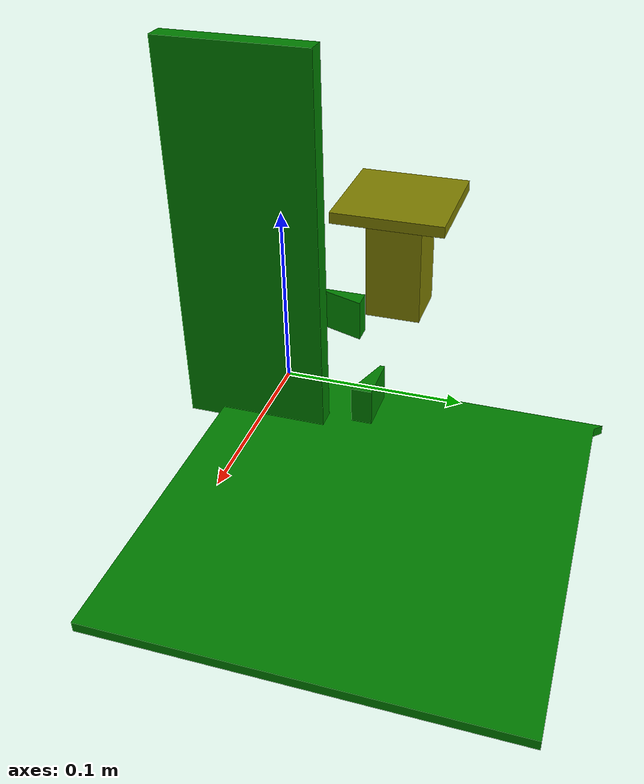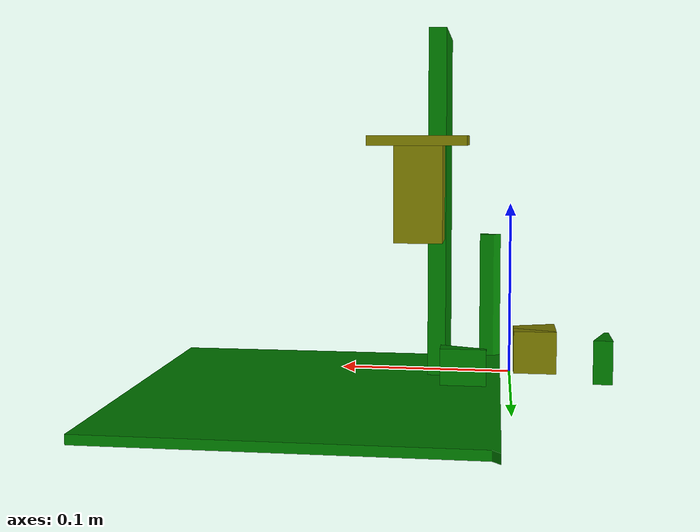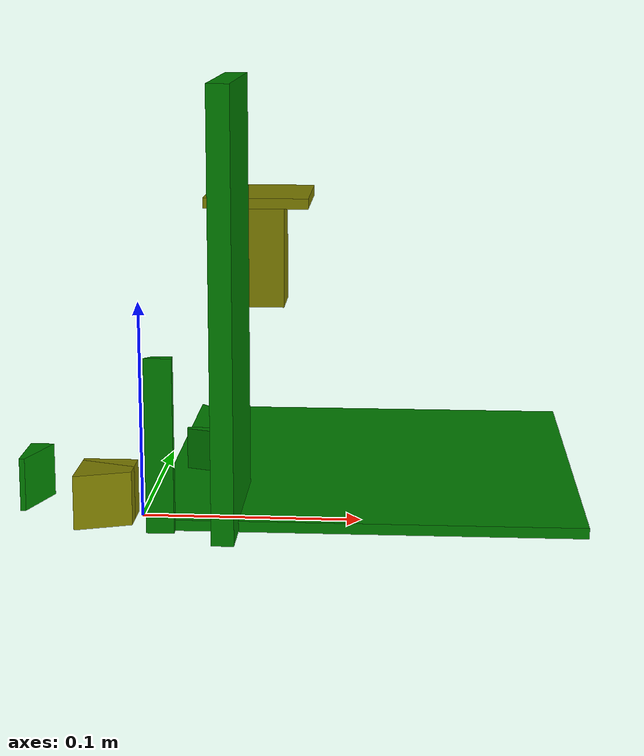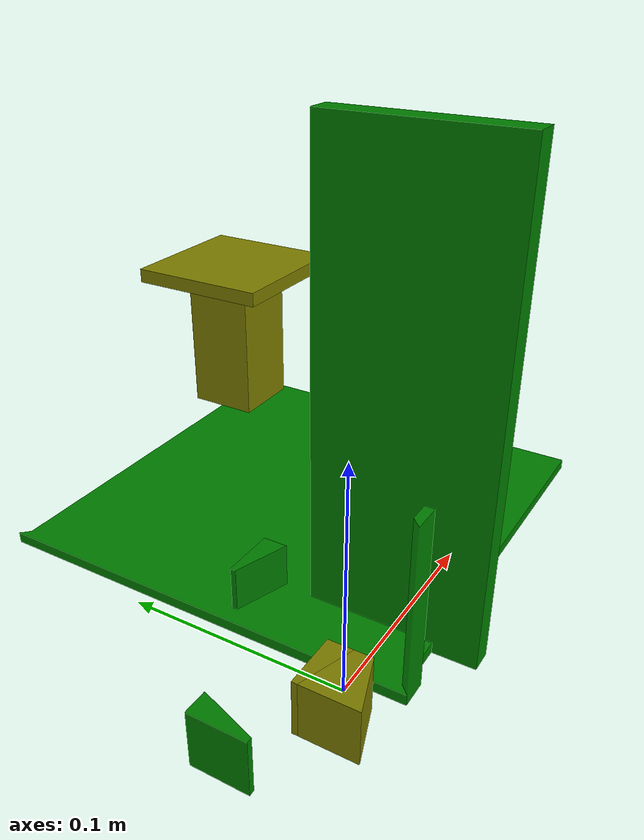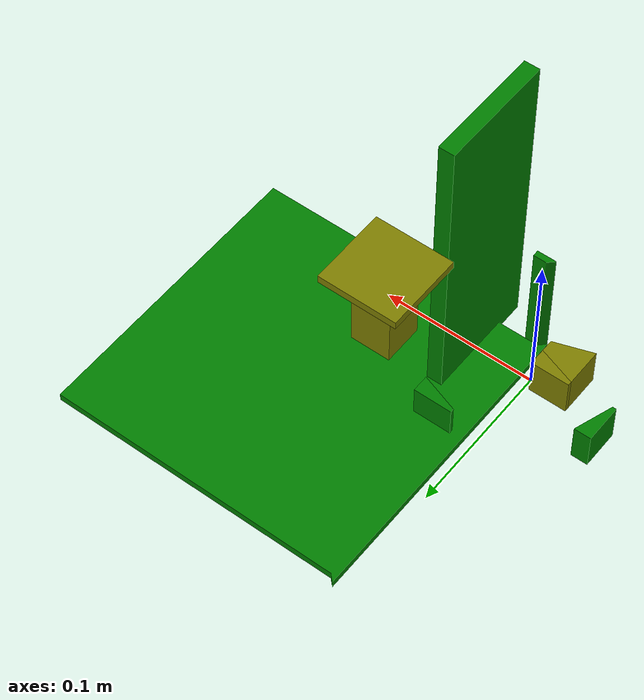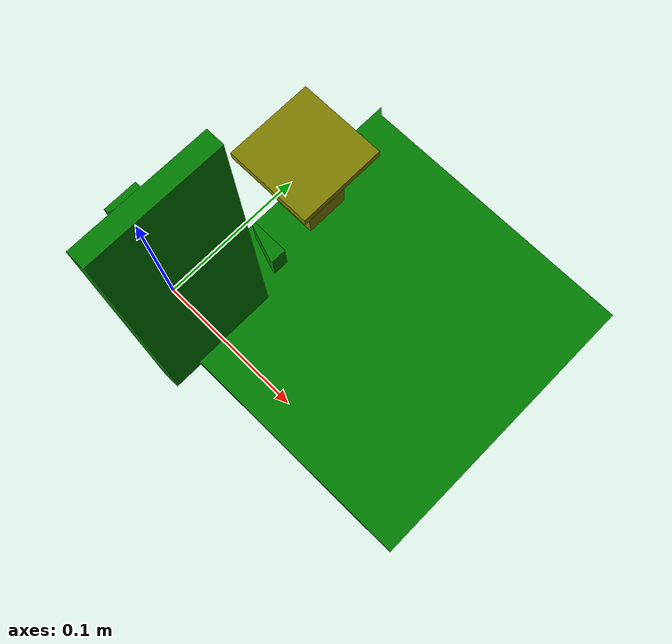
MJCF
<mujoco>
    <option integrator="implicitfast" impratio="20" noslip_iterations="5" cone="elliptic">
        <flag multiccd="enable"/>
    </option>
    <asset>
    <!-- lid -->

    <mesh name="lid1" file="task_assets/take_from_box/lid/Part Studio 1 - Part 6.stl" scale="0.001 0.001 0.001"/>
    <mesh name="lid2" file="task_assets/take_from_box/lid/Part Studio 1 - Part 7.stl" scale="0.001 0.001 0.001"/>
    <mesh name="lid3" file="task_assets/take_from_box/lid/Part Studio 1 - Part 8.stl" scale="0.001 0.001 0.001"/>
    <mesh name="lid4" file="task_assets/take_from_box/lid/Part Studio 1 - Part 9.stl" scale="0.001 0.001 0.001"/>

   <!-- p block -->

    <mesh name="box1" file="task_assets/take_from_box/box/Part Studio 1 - Part 1.stl" scale="0.001 0.001 0.001"/>
    <mesh name="box2" file="task_assets/take_from_box/box/Part Studio 1 - Part 2.stl" scale="0.001 0.001 0.001"/>
    <mesh name="box3" file="task_assets/take_from_box/box/Part Studio 1 - Part 3.stl" scale="0.001 0.001 0.001"/>
    <mesh name="box4" file="task_assets/take_from_box/box/Part Studio 1 - Part 4.stl" scale="0.001 0.001 0.001"/>
    <mesh name="box5" file="task_assets/take_from_box/box/Part Studio 1 - Part 5.stl" scale="0.001 0.001 0.001"/>
    <mesh name="marker" file="task_assets/take_from_box/box/Part Studio 1 - Part 10.stl" scale="0.001 0.001 0.001"/>
    </asset>

    <worldbody>

        <body name="whole_box" pos="0 0 0" >
            <body name="lid" quat="1 0 0 1">
                <joint name="pblock_joint" type="hinge" pos="0 -0.2 0.085" axis="1 0 0" range="0 90"/>
                <inertial pos="0 0 0" mass="0.25" diaginertia="1e-2 1e-2 1e-2"/>

                <geom type="mesh" mesh="lid1" rgba="0.5 0.5 0 1" name="lid1" friction="0.2 0.1 0.1"/>

                <geom type="mesh" mesh="lid2" rgba="0.5 0.5 0 1" name="lid3"/>

                <geom type="mesh" mesh="lid3" rgba="0.5 0.5 0 1" />

                <geom type="mesh" mesh="lid4" rgba="0.5 0.5 0 1" />

            </body>

            <body name="box" quat="1 0 0 1">
                <inertial pos="0 0 0" mass="10" diaginertia="1e-1 1e-1 1e-1"/>
                <geom type="mesh" mesh="box1" rgba="0 0.5 0 1" name="box_floor"/>

                <geom type="mesh" mesh="box2" rgba="0 0.5 0 1" />

                <geom type="mesh" mesh="box3" rgba="0 0.5 0 1" />

                <geom type="mesh" mesh="box4" rgba="0 0.5 0 1" />

                <geom type="mesh" mesh="box5" rgba="0 0.5 0 1" />

            </body>

        </body>

    </worldbody>

</mujoco>
